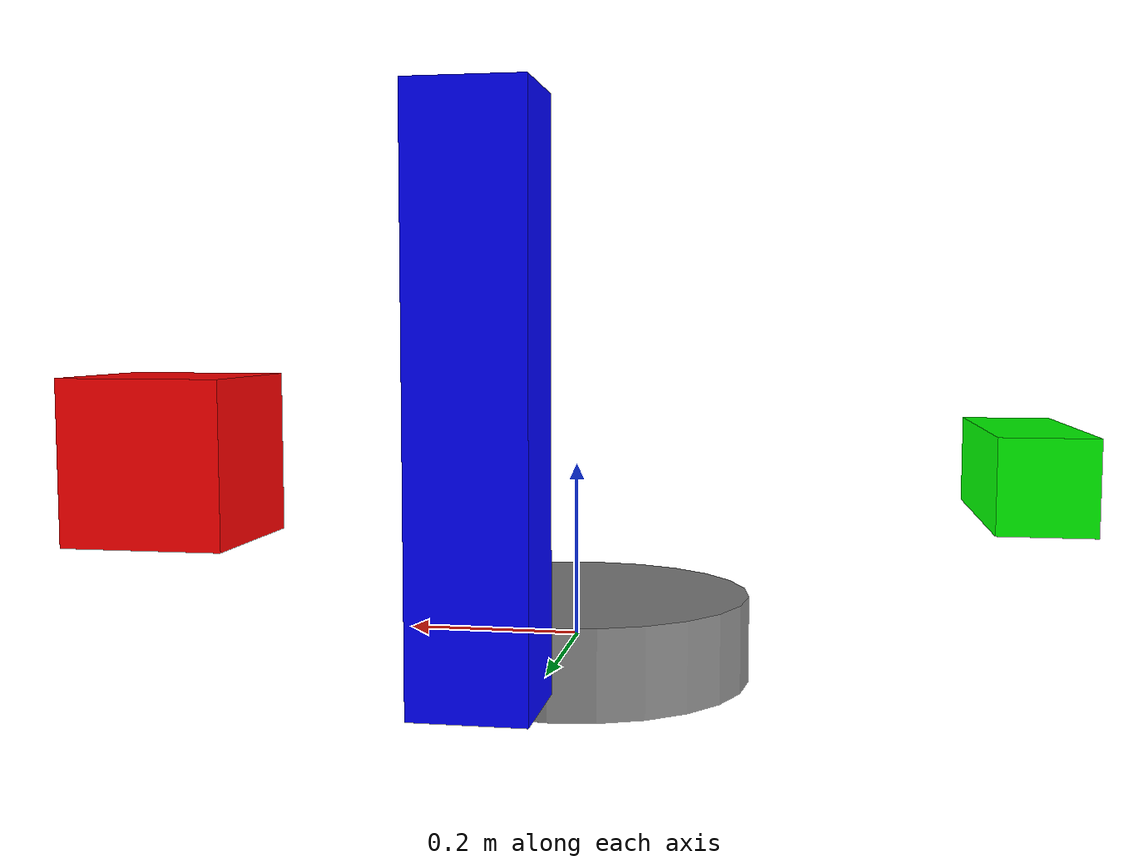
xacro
<?xml version="1.0"?>
<robot xmlns:xacro="http://www.ros.org/wiki/xacro" name="complex_test_robot">

  <!-- Test include via $(find ...) -->
  <xacro:include filename="$(find test_pkg)/sub.xacro" />

  <link name="base_link">
    <visual>
        <geometry>
            <cylinder radius="0.2" length="0.1"/>
        </geometry>
        <material name="gray">
            <color rgba="0.5 0.5 0.5 1"/>
        </material>
    </visual>
  </link>

  <!-- Instantiate macros from included file -->
  <xacro:colored_box name="box_red" color="1 0 0 1" size="0.2 0.2 0.2" position="0.5 0 0.2"/>
  <xacro:colored_box name="box_green" color="0 1 0 1" size="0.1 0.3 0.1" position="-0.5 0 0.2"/>
  <xacro:colored_box name="box_blue" color="0 0 1 1" size="0.1 0.1 0.5" position="0 0.5 0.3"/>

</robot>

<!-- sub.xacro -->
<robot xmlns:xacro="http://www.ros.org/wiki/xacro">
  <xacro:macro name="colored_box" params="name color size position">
    <link name="${name}">
      <visual>
        <origin xyz="0 0 0" rpy="0 0 0"/>
        <geometry>
          <box size="${size}"/>
        </geometry>
        <material name="${name}_mat">
            <color rgba="${color}"/>
        </material>
      </visual>
      <collision>
        <geometry>
          <box size="${size}"/>
        </geometry>
      </collision>
      <inertial>
        <mass value="1"/>
        <inertia ixx="1" ixy="0" ixz="0" iyy="1" iyz="0" izz="1"/>
      </inertial>
    </link>
    <joint name="${name}_joint" type="fixed">
        <parent link="base_link"/>
        <child link="${name}"/>
        <origin xyz="${position}" rpy="0 0 0"/>
    </joint>
  </xacro:macro>
</robot>
